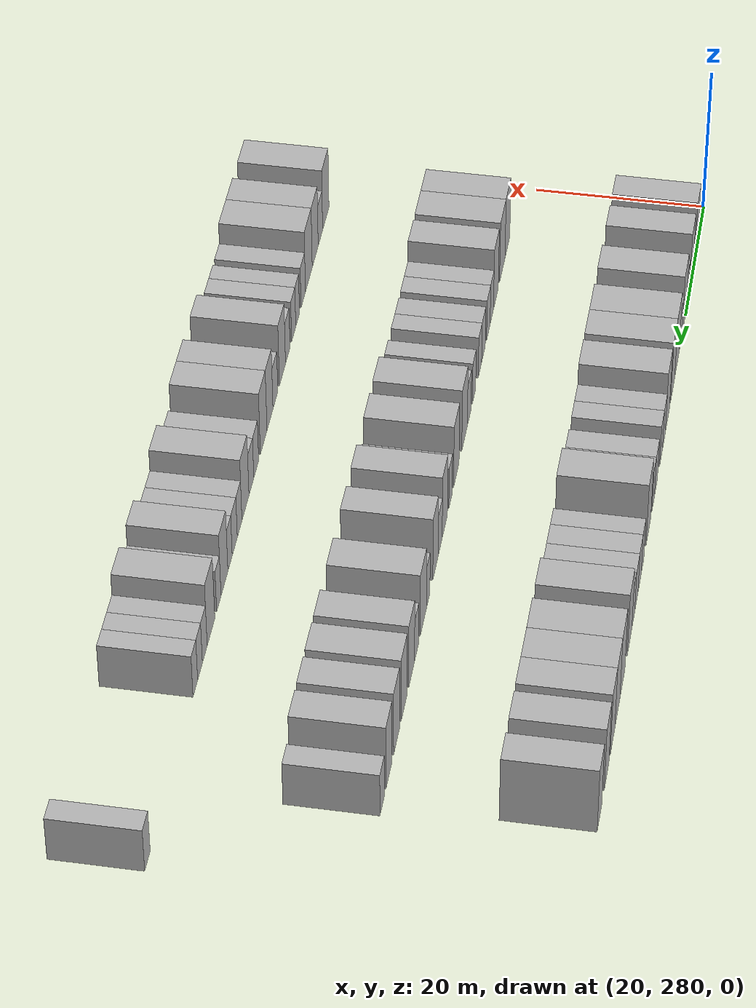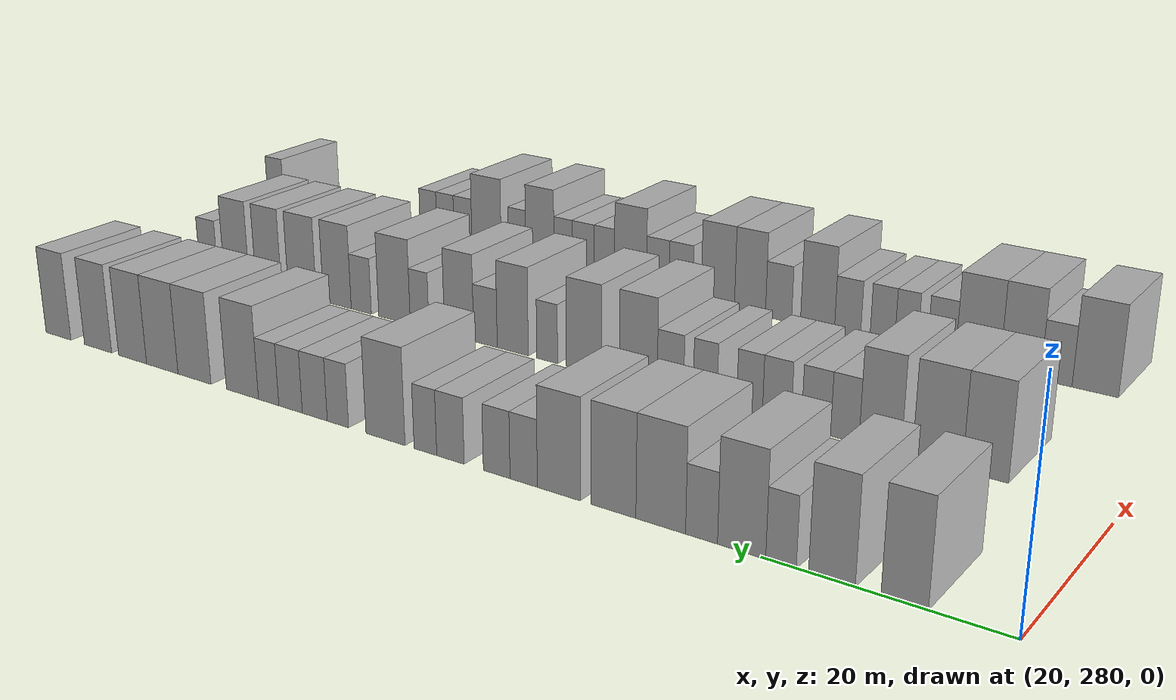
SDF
<sdf version="1.6">
 <world name="default">
  <model name="building_168">
   <static>1</static>
   <pose>25.0000 288.5473 0 0.000000 0.000000 0.000000</pose>
   <link name="link">
    <pose>0 0 4.50 0 0 0</pose>
    <collision name="collision"><geometry><box><size>10.0000 3.6170 9.0000</size></box></geometry></collision>
    <visual name="visual">
     <cast_shadows>0</cast_shadows>
     <geometry><box><size>10.0000 3.6170 9.0000</size></box></geometry>
     <material>
      <script>
       <uri>model://HANNAS_wall/materials/scripts</uri>
       <uri>model://HANNAS_wall/materials/textures</uri>
       <name>vrc/HANNAS_wall</name>
      </script>
     </material>
    </visual>
   </link>
  </model>
  <model name="building_169">
   <static>1</static>
   <pose>25.0000 294.2238 0 0.000000 0.000000 0.000000</pose>
   <link name="link">
    <pose>0 0 4.50 0 0 0</pose>
    <collision name="collision"><geometry><box><size>10.0000 3.7359 9.0000</size></box></geometry></collision>
    <visual name="visual">
     <cast_shadows>0</cast_shadows>
     <geometry><box><size>10.0000 3.7359 9.0000</size></box></geometry>
     <material>
      <script>
       <uri>model://HANNAS_wall/materials/scripts</uri>
       <uri>model://HANNAS_wall/materials/textures</uri>
       <name>vrc/HANNAS_wall</name>
      </script>
     </material>
    </visual>
   </link>
  </model>
  <model name="building_170">
   <static>1</static>
   <pose>25.0000 298.3610 0 0.000000 0.000000 0.000000</pose>
   <link name="link">
    <pose>0 0 3.00 0 0 0</pose>
    <collision name="collision"><geometry><box><size>10.0000 2.5385 6.0000</size></box></geometry></collision>
    <visual name="visual">
     <cast_shadows>0</cast_shadows>
     <geometry><box><size>10.0000 2.5385 6.0000</size></box></geometry>
     <material>
      <script>
       <uri>model://HANNAS_wall/materials/scripts</uri>
       <uri>model://HANNAS_wall/materials/textures</uri>
       <name>vrc/HANNAS_wall</name>
      </script>
     </material>
    </visual>
   </link>
  </model>
  <model name="building_171">
   <static>1</static>
   <pose>25.0000 301.6834 0 0.000000 0.000000 0.000000</pose>
   <link name="link">
    <pose>0 0 4.50 0 0 0</pose>
    <collision name="collision"><geometry><box><size>10.0000 4.1062 9.0000</size></box></geometry></collision>
    <visual name="visual">
     <cast_shadows>0</cast_shadows>
     <geometry><box><size>10.0000 4.1062 9.0000</size></box></geometry>
     <material>
      <script>
       <uri>model://HANNAS_wall/materials/scripts</uri>
       <uri>model://HANNAS_wall/materials/textures</uri>
       <name>vrc/HANNAS_wall</name>
      </script>
     </material>
    </visual>
   </link>
  </model>
  <model name="building_172">
   <static>1</static>
   <pose>25.0000 305.1374 0 0.000000 0.000000 0.000000</pose>
   <link name="link">
    <pose>0 0 3.00 0 0 0</pose>
    <collision name="collision"><geometry><box><size>10.0000 2.8018 6.0000</size></box></geometry></collision>
    <visual name="visual">
     <cast_shadows>0</cast_shadows>
     <geometry><box><size>10.0000 2.8018 6.0000</size></box></geometry>
     <material>
      <script>
       <uri>model://HANNAS_wall/materials/scripts</uri>
       <uri>model://HANNAS_wall/materials/textures</uri>
       <name>vrc/HANNAS_wall</name>
      </script>
     </material>
    </visual>
   </link>
  </model>
  <model name="building_173">
   <static>1</static>
   <pose>25.0000 308.7852 0 0.000000 0.000000 0.000000</pose>
   <link name="link">
    <pose>0 0 4.50 0 0 0</pose>
    <collision name="collision"><geometry><box><size>10.0000 4.4940 9.0000</size></box></geometry></collision>
    <visual name="visual">
     <cast_shadows>0</cast_shadows>
     <geometry><box><size>10.0000 4.4940 9.0000</size></box></geometry>
     <material>
      <script>
       <uri>model://HANNAS_wall/materials/scripts</uri>
       <uri>model://HANNAS_wall/materials/textures</uri>
       <name>vrc/HANNAS_wall</name>
      </script>
     </material>
    </visual>
   </link>
  </model>
  <model name="building_174">
   <static>1</static>
   <pose>25.0000 313.1462 0 0.000000 0.000000 0.000000</pose>
   <link name="link">
    <pose>0 0 4.50 0 0 0</pose>
    <collision name="collision"><geometry><box><size>10.0000 4.2279 9.0000</size></box></geometry></collision>
    <visual name="visual">
     <cast_shadows>0</cast_shadows>
     <geometry><box><size>10.0000 4.2279 9.0000</size></box></geometry>
     <material>
      <script>
       <uri>model://HANNAS_wall/materials/scripts</uri>
       <uri>model://HANNAS_wall/materials/textures</uri>
       <name>vrc/HANNAS_wall</name>
      </script>
     </material>
    </visual>
   </link>
  </model>
  <model name="building_175">
   <static>1</static>
   <pose>25.0000 318.3554 0 0.000000 0.000000 0.000000</pose>
   <link name="link">
    <pose>0 0 4.50 0 0 0</pose>
    <collision name="collision"><geometry><box><size>10.0000 4.1904 9.0000</size></box></geometry></collision>
    <visual name="visual">
     <cast_shadows>0</cast_shadows>
     <geometry><box><size>10.0000 4.1904 9.0000</size></box></geometry>
     <material>
      <script>
       <uri>model://HANNAS_wall/materials/scripts</uri>
       <uri>model://HANNAS_wall/materials/textures</uri>
       <name>vrc/HANNAS_wall</name>
      </script>
     </material>
    </visual>
   </link>
  </model>
  <model name="building_176">
   <static>1</static>
   <pose>25.0000 321.8205 0 0.000000 0.000000 0.000000</pose>
   <link name="link">
    <pose>0 0 3.00 0 0 0</pose>
    <collision name="collision"><geometry><box><size>10.0000 2.7398 6.0000</size></box></geometry></collision>
    <visual name="visual">
     <cast_shadows>0</cast_shadows>
     <geometry><box><size>10.0000 2.7398 6.0000</size></box></geometry>
     <material>
      <script>
       <uri>model://HANNAS_wall/materials/scripts</uri>
       <uri>model://HANNAS_wall/materials/textures</uri>
       <name>vrc/HANNAS_wall</name>
      </script>
     </material>
    </visual>
   </link>
  </model>
  <model name="building_177">
   <static>1</static>
   <pose>25.0000 324.5578 0 0.000000 0.000000 0.000000</pose>
   <link name="link">
    <pose>0 0 3.00 0 0 0</pose>
    <collision name="collision"><geometry><box><size>10.0000 2.7348 6.0000</size></box></geometry></collision>
    <visual name="visual">
     <cast_shadows>0</cast_shadows>
     <geometry><box><size>10.0000 2.7348 6.0000</size></box></geometry>
     <material>
      <script>
       <uri>model://HANNAS_wall/materials/scripts</uri>
       <uri>model://HANNAS_wall/materials/textures</uri>
       <name>vrc/HANNAS_wall</name>
      </script>
     </material>
    </visual>
   </link>
  </model>
  <model name="building_178">
   <static>1</static>
   <pose>25.0000 329.3875 0 0.000000 0.000000 0.000000</pose>
   <link name="link">
    <pose>0 0 3.00 0 0 0</pose>
    <collision name="collision"><geometry><box><size>10.0000 2.9247 6.0000</size></box></geometry></collision>
    <visual name="visual">
     <cast_shadows>0</cast_shadows>
     <geometry><box><size>10.0000 2.9247 6.0000</size></box></geometry>
     <material>
      <script>
       <uri>model://HANNAS_wall/materials/scripts</uri>
       <uri>model://HANNAS_wall/materials/textures</uri>
       <name>vrc/HANNAS_wall</name>
      </script>
     </material>
    </visual>
   </link>
  </model>
  <model name="building_179">
   <static>1</static>
   <pose>25.0000 332.0744 0 0.000000 0.000000 0.000000</pose>
   <link name="link">
    <pose>0 0 3.00 0 0 0</pose>
    <collision name="collision"><geometry><box><size>10.0000 2.4490 6.0000</size></box></geometry></collision>
    <visual name="visual">
     <cast_shadows>0</cast_shadows>
     <geometry><box><size>10.0000 2.4490 6.0000</size></box></geometry>
     <material>
      <script>
       <uri>model://HANNAS_wall/materials/scripts</uri>
       <uri>model://HANNAS_wall/materials/textures</uri>
       <name>vrc/HANNAS_wall</name>
      </script>
     </material>
    </visual>
   </link>
  </model>
  <model name="building_180">
   <static>1</static>
   <pose>25.0000 336.4871 0 0.000000 0.000000 0.000000</pose>
   <link name="link">
    <pose>0 0 4.50 0 0 0</pose>
    <collision name="collision"><geometry><box><size>10.0000 4.3764 9.0000</size></box></geometry></collision>
    <visual name="visual">
     <cast_shadows>0</cast_shadows>
     <geometry><box><size>10.0000 4.3764 9.0000</size></box></geometry>
     <material>
      <script>
       <uri>model://HANNAS_wall/materials/scripts</uri>
       <uri>model://HANNAS_wall/materials/textures</uri>
       <name>vrc/HANNAS_wall</name>
      </script>
     </material>
    </visual>
   </link>
  </model>
  <model name="building_181">
   <static>1</static>
   <pose>25.0000 341.9205 0 0.000000 0.000000 0.000000</pose>
   <link name="link">
    <pose>0 0 3.00 0 0 0</pose>
    <collision name="collision"><geometry><box><size>10.0000 2.4905 6.0000</size></box></geometry></collision>
    <visual name="visual">
     <cast_shadows>0</cast_shadows>
     <geometry><box><size>10.0000 2.4905 6.0000</size></box></geometry>
     <material>
      <script>
       <uri>model://HANNAS_wall/materials/scripts</uri>
       <uri>model://HANNAS_wall/materials/textures</uri>
       <name>vrc/HANNAS_wall</name>
      </script>
     </material>
    </visual>
   </link>
  </model>
  <model name="building_182">
   <static>1</static>
   <pose>25.0000 344.6469 0 0.000000 0.000000 0.000000</pose>
   <link name="link">
    <pose>0 0 3.00 0 0 0</pose>
    <collision name="collision"><geometry><box><size>10.0000 2.9623 6.0000</size></box></geometry></collision>
    <visual name="visual">
     <cast_shadows>0</cast_shadows>
     <geometry><box><size>10.0000 2.9623 6.0000</size></box></geometry>
     <material>
      <script>
       <uri>model://HANNAS_wall/materials/scripts</uri>
       <uri>model://HANNAS_wall/materials/textures</uri>
       <name>vrc/HANNAS_wall</name>
      </script>
     </material>
    </visual>
   </link>
  </model>
  <model name="building_183">
   <static>1</static>
   <pose>25.0000 347.5592 0 0.000000 0.000000 0.000000</pose>
   <link name="link">
    <pose>0 0 3.00 0 0 0</pose>
    <collision name="collision"><geometry><box><size>10.0000 2.8623 6.0000</size></box></geometry></collision>
    <visual name="visual">
     <cast_shadows>0</cast_shadows>
     <geometry><box><size>10.0000 2.8623 6.0000</size></box></geometry>
     <material>
      <script>
       <uri>model://HANNAS_wall/materials/scripts</uri>
       <uri>model://HANNAS_wall/materials/textures</uri>
       <name>vrc/HANNAS_wall</name>
      </script>
     </material>
    </visual>
   </link>
  </model>
  <model name="building_184">
   <static>1</static>
   <pose>25.0000 350.2515 0 0.000000 0.000000 0.000000</pose>
   <link name="link">
    <pose>0 0 3.00 0 0 0</pose>
    <collision name="collision"><geometry><box><size>10.0000 2.5224 6.0000</size></box></geometry></collision>
    <visual name="visual">
     <cast_shadows>0</cast_shadows>
     <geometry><box><size>10.0000 2.5224 6.0000</size></box></geometry>
     <material>
      <script>
       <uri>model://HANNAS_wall/materials/scripts</uri>
       <uri>model://HANNAS_wall/materials/textures</uri>
       <name>vrc/HANNAS_wall</name>
      </script>
     </material>
    </visual>
   </link>
  </model>
  <model name="building_185">
   <static>1</static>
   <pose>25.0000 353.5379 0 0.000000 0.000000 0.000000</pose>
   <link name="link">
    <pose>0 0 4.50 0 0 0</pose>
    <collision name="collision"><geometry><box><size>10.0000 4.0504 9.0000</size></box></geometry></collision>
    <visual name="visual">
     <cast_shadows>0</cast_shadows>
     <geometry><box><size>10.0000 4.0504 9.0000</size></box></geometry>
     <material>
      <script>
       <uri>model://HANNAS_wall/materials/scripts</uri>
       <uri>model://HANNAS_wall/materials/textures</uri>
       <name>vrc/HANNAS_wall</name>
      </script>
     </material>
    </visual>
   </link>
  </model>
  <model name="building_186">
   <static>1</static>
   <pose>25.0000 359.7402 0 0.000000 0.000000 0.000000</pose>
   <link name="link">
    <pose>0 0 4.50 0 0 0</pose>
    <collision name="collision"><geometry><box><size>10.0000 4.3541 9.0000</size></box></geometry></collision>
    <visual name="visual">
     <cast_shadows>0</cast_shadows>
     <geometry><box><size>10.0000 4.3541 9.0000</size></box></geometry>
     <material>
      <script>
       <uri>model://HANNAS_wall/materials/scripts</uri>
       <uri>model://HANNAS_wall/materials/textures</uri>
       <name>vrc/HANNAS_wall</name>
      </script>
     </material>
    </visual>
   </link>
  </model>
  <model name="building_187">
   <static>1</static>
   <pose>25.0000 364.0581 0 0.000000 0.000000 0.000000</pose>
   <link name="link">
    <pose>0 0 4.50 0 0 0</pose>
    <collision name="collision"><geometry><box><size>10.0000 4.2816 9.0000</size></box></geometry></collision>
    <visual name="visual">
     <cast_shadows>0</cast_shadows>
     <geometry><box><size>10.0000 4.2816 9.0000</size></box></geometry>
     <material>
      <script>
       <uri>model://HANNAS_wall/materials/scripts</uri>
       <uri>model://HANNAS_wall/materials/textures</uri>
       <name>vrc/HANNAS_wall</name>
      </script>
     </material>
    </visual>
   </link>
  </model>
  <model name="building_188">
   <static>1</static>
   <pose>25.0000 368.1512 0 0.000000 0.000000 0.000000</pose>
   <link name="link">
    <pose>0 0 4.50 0 0 0</pose>
    <collision name="collision"><geometry><box><size>10.0000 3.9047 9.0000</size></box></geometry></collision>
    <visual name="visual">
     <cast_shadows>0</cast_shadows>
     <geometry><box><size>10.0000 3.9047 9.0000</size></box></geometry>
     <material>
      <script>
       <uri>model://HANNAS_wall/materials/scripts</uri>
       <uri>model://HANNAS_wall/materials/textures</uri>
       <name>vrc/HANNAS_wall</name>
      </script>
     </material>
    </visual>
   </link>
  </model>
  <model name="building_189">
   <static>1</static>
   <pose>25.0000 373.0566 0 0.000000 0.000000 0.000000</pose>
   <link name="link">
    <pose>0 0 4.50 0 0 0</pose>
    <collision name="collision"><geometry><box><size>10.0000 3.9061 9.0000</size></box></geometry></collision>
    <visual name="visual">
     <cast_shadows>0</cast_shadows>
     <geometry><box><size>10.0000 3.9061 9.0000</size></box></geometry>
     <material>
      <script>
       <uri>model://HANNAS_wall/materials/scripts</uri>
       <uri>model://HANNAS_wall/materials/textures</uri>
       <name>vrc/HANNAS_wall</name>
      </script>
     </material>
    </visual>
   </link>
  </model>
  <model name="building_190">
   <static>1</static>
   <pose>25.0000 378.8685 0 0.000000 0.000000 0.000000</pose>
   <link name="link">
    <pose>0 0 4.50 0 0 0</pose>
    <collision name="collision"><geometry><box><size>10.0000 3.7177 9.0000</size></box></geometry></collision>
    <visual name="visual">
     <cast_shadows>0</cast_shadows>
     <geometry><box><size>10.0000 3.7177 9.0000</size></box></geometry>
     <material>
      <script>
       <uri>model://HANNAS_wall/materials/scripts</uri>
       <uri>model://HANNAS_wall/materials/textures</uri>
       <name>vrc/HANNAS_wall</name>
      </script>
     </material>
    </visual>
   </link>
  </model>
  <model name="building_353">
   <static>1</static>
   <pose>47.0000 291.2219 0 0.000000 0.000000 0.000000</pose>
   <link name="link">
    <pose>0 0 4.50 0 0 0</pose>
    <collision name="collision"><geometry><box><size>10.0000 3.9709 9.0000</size></box></geometry></collision>
    <visual name="visual">
     <cast_shadows>0</cast_shadows>
     <geometry><box><size>10.0000 3.9709 9.0000</size></box></geometry>
     <material>
      <script>
       <uri>model://HANNAS_wall/materials/scripts</uri>
       <uri>model://HANNAS_wall/materials/textures</uri>
       <name>vrc/HANNAS_wall</name>
      </script>
     </material>
    </visual>
   </link>
  </model>
  <model name="building_354">
   <static>1</static>
   <pose>47.0000 295.4211 0 0.000000 0.000000 0.000000</pose>
   <link name="link">
    <pose>0 0 4.50 0 0 0</pose>
    <collision name="collision"><geometry><box><size>10.0000 4.4274 9.0000</size></box></geometry></collision>
    <visual name="visual">
     <cast_shadows>0</cast_shadows>
     <geometry><box><size>10.0000 4.4274 9.0000</size></box></geometry>
     <material>
      <script>
       <uri>model://HANNAS_wall/materials/scripts</uri>
       <uri>model://HANNAS_wall/materials/textures</uri>
       <name>vrc/HANNAS_wall</name>
      </script>
     </material>
    </visual>
   </link>
  </model>
  <model name="building_355">
   <static>1</static>
   <pose>47.0000 300.5773 0 0.000000 0.000000 0.000000</pose>
   <link name="link">
    <pose>0 0 4.50 0 0 0</pose>
    <collision name="collision"><geometry><box><size>10.0000 3.8851 9.0000</size></box></geometry></collision>
    <visual name="visual">
     <cast_shadows>0</cast_shadows>
     <geometry><box><size>10.0000 3.8851 9.0000</size></box></geometry>
     <material>
      <script>
       <uri>model://HANNAS_wall/materials/scripts</uri>
       <uri>model://HANNAS_wall/materials/textures</uri>
       <name>vrc/HANNAS_wall</name>
      </script>
     </material>
    </visual>
   </link>
  </model>
  <model name="building_356">
   <static>1</static>
   <pose>47.0000 303.8608 0 0.000000 0.000000 0.000000</pose>
   <link name="link">
    <pose>0 0 3.00 0 0 0</pose>
    <collision name="collision"><geometry><box><size>10.0000 2.6818 6.0000</size></box></geometry></collision>
    <visual name="visual">
     <cast_shadows>0</cast_shadows>
     <geometry><box><size>10.0000 2.6818 6.0000</size></box></geometry>
     <material>
      <script>
       <uri>model://HANNAS_wall/materials/scripts</uri>
       <uri>model://HANNAS_wall/materials/textures</uri>
       <name>vrc/HANNAS_wall</name>
      </script>
     </material>
    </visual>
   </link>
  </model>
  <model name="building_357">
   <static>1</static>
   <pose>47.0000 306.6035 0 0.000000 0.000000 0.000000</pose>
   <link name="link">
    <pose>0 0 3.00 0 0 0</pose>
    <collision name="collision"><geometry><box><size>10.0000 2.8036 6.0000</size></box></geometry></collision>
    <visual name="visual">
     <cast_shadows>0</cast_shadows>
     <geometry><box><size>10.0000 2.8036 6.0000</size></box></geometry>
     <material>
      <script>
       <uri>model://HANNAS_wall/materials/scripts</uri>
       <uri>model://HANNAS_wall/materials/textures</uri>
       <name>vrc/HANNAS_wall</name>
      </script>
     </material>
    </visual>
   </link>
  </model>
  <model name="building_358">
   <static>1</static>
   <pose>47.0000 310.4274 0 0.000000 0.000000 0.000000</pose>
   <link name="link">
    <pose>0 0 3.00 0 0 0</pose>
    <collision name="collision"><geometry><box><size>10.0000 2.8443 6.0000</size></box></geometry></collision>
    <visual name="visual">
     <cast_shadows>0</cast_shadows>
     <geometry><box><size>10.0000 2.8443 6.0000</size></box></geometry>
     <material>
      <script>
       <uri>model://HANNAS_wall/materials/scripts</uri>
       <uri>model://HANNAS_wall/materials/textures</uri>
       <name>vrc/HANNAS_wall</name>
      </script>
     </material>
    </visual>
   </link>
  </model>
  <model name="building_359">
   <static>1</static>
   <pose>47.0000 313.1494 0 0.000000 0.000000 0.000000</pose>
   <link name="link">
    <pose>0 0 3.00 0 0 0</pose>
    <collision name="collision"><geometry><box><size>10.0000 2.5996 6.0000</size></box></geometry></collision>
    <visual name="visual">
     <cast_shadows>0</cast_shadows>
     <geometry><box><size>10.0000 2.5996 6.0000</size></box></geometry>
     <material>
      <script>
       <uri>model://HANNAS_wall/materials/scripts</uri>
       <uri>model://HANNAS_wall/materials/textures</uri>
       <name>vrc/HANNAS_wall</name>
      </script>
     </material>
    </visual>
   </link>
  </model>
  <model name="building_360">
   <static>1</static>
   <pose>47.0000 317.6934 0 0.000000 0.000000 0.000000</pose>
   <link name="link">
    <pose>0 0 3.00 0 0 0</pose>
    <collision name="collision"><geometry><box><size>10.0000 2.4884 6.0000</size></box></geometry></collision>
    <visual name="visual">
     <cast_shadows>0</cast_shadows>
     <geometry><box><size>10.0000 2.4884 6.0000</size></box></geometry>
     <material>
      <script>
       <uri>model://HANNAS_wall/materials/scripts</uri>
       <uri>model://HANNAS_wall/materials/textures</uri>
       <name>vrc/HANNAS_wall</name>
      </script>
     </material>
    </visual>
   </link>
  </model>
  <model name="building_361">
   <static>1</static>
   <pose>47.0000 321.3483 0 0.000000 0.000000 0.000000</pose>
   <link name="link">
    <pose>0 0 3.00 0 0 0</pose>
    <collision name="collision"><geometry><box><size>10.0000 2.8214 6.0000</size></box></geometry></collision>
    <visual name="visual">
     <cast_shadows>0</cast_shadows>
     <geometry><box><size>10.0000 2.8214 6.0000</size></box></geometry>
     <material>
      <script>
       <uri>model://HANNAS_wall/materials/scripts</uri>
       <uri>model://HANNAS_wall/materials/textures</uri>
       <name>vrc/HANNAS_wall</name>
      </script>
     </material>
    </visual>
   </link>
  </model>
  <model name="building_362">
   <static>1</static>
   <pose>47.0000 324.8235 0 0.000000 0.000000 0.000000</pose>
   <link name="link">
    <pose>0 0 4.50 0 0 0</pose>
    <collision name="collision"><geometry><box><size>10.0000 4.1291 9.0000</size></box></geometry></collision>
    <visual name="visual">
     <cast_shadows>0</cast_shadows>
     <geometry><box><size>10.0000 4.1291 9.0000</size></box></geometry>
     <material>
      <script>
       <uri>model://HANNAS_wall/materials/scripts</uri>
       <uri>model://HANNAS_wall/materials/textures</uri>
       <name>vrc/HANNAS_wall</name>
      </script>
     </material>
    </visual>
   </link>
  </model>
  <model name="building_363">
   <static>1</static>
   <pose>47.0000 330.8930 0 0.000000 0.000000 0.000000</pose>
   <link name="link">
    <pose>0 0 4.50 0 0 0</pose>
    <collision name="collision"><geometry><box><size>10.0000 4.0099 9.0000</size></box></geometry></collision>
    <visual name="visual">
     <cast_shadows>0</cast_shadows>
     <geometry><box><size>10.0000 4.0099 9.0000</size></box></geometry>
     <material>
      <script>
       <uri>model://HANNAS_wall/materials/scripts</uri>
       <uri>model://HANNAS_wall/materials/textures</uri>
       <name>vrc/HANNAS_wall</name>
      </script>
     </material>
    </visual>
   </link>
  </model>
  <model name="building_364">
   <static>1</static>
   <pose>47.0000 335.1153 0 0.000000 0.000000 0.000000</pose>
   <link name="link">
    <pose>0 0 3.00 0 0 0</pose>
    <collision name="collision"><geometry><box><size>10.0000 2.4347 6.0000</size></box></geometry></collision>
    <visual name="visual">
     <cast_shadows>0</cast_shadows>
     <geometry><box><size>10.0000 2.4347 6.0000</size></box></geometry>
     <material>
      <script>
       <uri>model://HANNAS_wall/materials/scripts</uri>
       <uri>model://HANNAS_wall/materials/textures</uri>
       <name>vrc/HANNAS_wall</name>
      </script>
     </material>
    </visual>
   </link>
  </model>
  <model name="building_365">
   <static>1</static>
   <pose>47.0000 339.1998 0 0.000000 0.000000 0.000000</pose>
   <link name="link">
    <pose>0 0 4.50 0 0 0</pose>
    <collision name="collision"><geometry><box><size>10.0000 3.7341 9.0000</size></box></geometry></collision>
    <visual name="visual">
     <cast_shadows>0</cast_shadows>
     <geometry><box><size>10.0000 3.7341 9.0000</size></box></geometry>
     <material>
      <script>
       <uri>model://HANNAS_wall/materials/scripts</uri>
       <uri>model://HANNAS_wall/materials/textures</uri>
       <name>vrc/HANNAS_wall</name>
      </script>
     </material>
    </visual>
   </link>
  </model>
  <model name="building_366">
   <static>1</static>
   <pose>47.0000 342.5121 0 0.000000 0.000000 0.000000</pose>
   <link name="link">
    <pose>0 0 3.00 0 0 0</pose>
    <collision name="collision"><geometry><box><size>10.0000 2.8907 6.0000</size></box></geometry></collision>
    <visual name="visual">
     <cast_shadows>0</cast_shadows>
     <geometry><box><size>10.0000 2.8907 6.0000</size></box></geometry>
     <material>
      <script>
       <uri>model://HANNAS_wall/materials/scripts</uri>
       <uri>model://HANNAS_wall/materials/textures</uri>
       <name>vrc/HANNAS_wall</name>
      </script>
     </material>
    </visual>
   </link>
  </model>
  <model name="building_367">
   <static>1</static>
   <pose>47.0000 345.7878 0 0.000000 0.000000 0.000000</pose>
   <link name="link">
    <pose>0 0 4.50 0 0 0</pose>
    <collision name="collision"><geometry><box><size>10.0000 3.6606 9.0000</size></box></geometry></collision>
    <visual name="visual">
     <cast_shadows>0</cast_shadows>
     <geometry><box><size>10.0000 3.6606 9.0000</size></box></geometry>
     <material>
      <script>
       <uri>model://HANNAS_wall/materials/scripts</uri>
       <uri>model://HANNAS_wall/materials/textures</uri>
       <name>vrc/HANNAS_wall</name>
      </script>
     </material>
    </visual>
   </link>
  </model>
  <model name="building_368">
   <static>1</static>
   <pose>47.0000 350.8263 0 0.000000 0.000000 0.000000</pose>
   <link name="link">
    <pose>0 0 3.00 0 0 0</pose>
    <collision name="collision"><geometry><box><size>10.0000 2.4166 6.0000</size></box></geometry></collision>
    <visual name="visual">
     <cast_shadows>0</cast_shadows>
     <geometry><box><size>10.0000 2.4166 6.0000</size></box></geometry>
     <material>
      <script>
       <uri>model://HANNAS_wall/materials/scripts</uri>
       <uri>model://HANNAS_wall/materials/textures</uri>
       <name>vrc/HANNAS_wall</name>
      </script>
     </material>
    </visual>
   </link>
  </model>
  <model name="building_369">
   <static>1</static>
   <pose>47.0000 354.1201 0 0.000000 0.000000 0.000000</pose>
   <link name="link">
    <pose>0 0 4.50 0 0 0</pose>
    <collision name="collision"><geometry><box><size>10.0000 4.1710 9.0000</size></box></geometry></collision>
    <visual name="visual">
     <cast_shadows>0</cast_shadows>
     <geometry><box><size>10.0000 4.1710 9.0000</size></box></geometry>
     <material>
      <script>
       <uri>model://HANNAS_wall/materials/scripts</uri>
       <uri>model://HANNAS_wall/materials/textures</uri>
       <name>vrc/HANNAS_wall</name>
      </script>
     </material>
    </visual>
   </link>
  </model>
  <model name="building_370">
   <static>1</static>
   <pose>47.0000 358.5732 0 0.000000 0.000000 0.000000</pose>
   <link name="link">
    <pose>0 0 3.00 0 0 0</pose>
    <collision name="collision"><geometry><box><size>10.0000 2.7352 6.0000</size></box></geometry></collision>
    <visual name="visual">
     <cast_shadows>0</cast_shadows>
     <geometry><box><size>10.0000 2.7352 6.0000</size></box></geometry>
     <material>
      <script>
       <uri>model://HANNAS_wall/materials/scripts</uri>
       <uri>model://HANNAS_wall/materials/textures</uri>
       <name>vrc/HANNAS_wall</name>
      </script>
     </material>
    </visual>
   </link>
  </model>
  <model name="building_371">
   <static>1</static>
   <pose>47.0000 361.8616 0 0.000000 0.000000 0.000000</pose>
   <link name="link">
    <pose>0 0 4.50 0 0 0</pose>
    <collision name="collision"><geometry><box><size>10.0000 3.8415 9.0000</size></box></geometry></collision>
    <visual name="visual">
     <cast_shadows>0</cast_shadows>
     <geometry><box><size>10.0000 3.8415 9.0000</size></box></geometry>
     <material>
      <script>
       <uri>model://HANNAS_wall/materials/scripts</uri>
       <uri>model://HANNAS_wall/materials/textures</uri>
       <name>vrc/HANNAS_wall</name>
      </script>
     </material>
    </visual>
   </link>
  </model>
  <model name="building_372">
   <static>1</static>
   <pose>47.0000 366.7899 0 0.000000 0.000000 0.000000</pose>
   <link name="link">
    <pose>0 0 4.50 0 0 0</pose>
    <collision name="collision"><geometry><box><size>10.0000 4.0149 9.0000</size></box></geometry></collision>
    <visual name="visual">
     <cast_shadows>0</cast_shadows>
     <geometry><box><size>10.0000 4.0149 9.0000</size></box></geometry>
     <material>
      <script>
       <uri>model://HANNAS_wall/materials/scripts</uri>
       <uri>model://HANNAS_wall/materials/textures</uri>
       <name>vrc/HANNAS_wall</name>
      </script>
     </material>
    </visual>
   </link>
  </model>
  <model name="building_373">
   <static>1</static>
   <pose>47.0000 371.6781 0 0.000000 0.000000 0.000000</pose>
   <link name="link">
    <pose>0 0 4.50 0 0 0</pose>
    <collision name="collision"><geometry><box><size>10.0000 3.7616 9.0000</size></box></geometry></collision>
    <visual name="visual">
     <cast_shadows>0</cast_shadows>
     <geometry><box><size>10.0000 3.7616 9.0000</size></box></geometry>
     <material>
      <script>
       <uri>model://HANNAS_wall/materials/scripts</uri>
       <uri>model://HANNAS_wall/materials/textures</uri>
       <name>vrc/HANNAS_wall</name>
      </script>
     </material>
    </visual>
   </link>
  </model>
  <model name="building_374">
   <static>1</static>
   <pose>47.0000 376.4530 0 0.000000 0.000000 0.000000</pose>
   <link name="link">
    <pose>0 0 4.50 0 0 0</pose>
    <collision name="collision"><geometry><box><size>10.0000 3.7881 9.0000</size></box></geometry></collision>
    <visual name="visual">
     <cast_shadows>0</cast_shadows>
     <geometry><box><size>10.0000 3.7881 9.0000</size></box></geometry>
     <material>
      <script>
       <uri>model://HANNAS_wall/materials/scripts</uri>
       <uri>model://HANNAS_wall/materials/textures</uri>
       <name>vrc/HANNAS_wall</name>
      </script>
     </material>
    </visual>
   </link>
  </model>
  <model name="building_375">
   <static>1</static>
   <pose>47.0000 380.7212 0 0.000000 0.000000 0.000000</pose>
   <link name="link">
    <pose>0 0 3.00 0 0 0</pose>
    <collision name="collision"><geometry><box><size>10.0000 2.7483 6.0000</size></box></geometry></collision>
    <visual name="visual">
     <cast_shadows>0</cast_shadows>
     <geometry><box><size>10.0000 2.7483 6.0000</size></box></geometry>
     <material>
      <script>
       <uri>model://HANNAS_wall/materials/scripts</uri>
       <uri>model://HANNAS_wall/materials/textures</uri>
       <name>vrc/HANNAS_wall</name>
      </script>
     </material>
    </visual>
   </link>
  </model>
  <model name="building_535">
   <static>1</static>
   <pose>69.0000 289.3589 0 0.000000 0.000000 0.000000</pose>
   <link name="link">
    <pose>0 0 4.50 0 0 0</pose>
    <collision name="collision"><geometry><box><size>10.0000 4.3013 9.0000</size></box></geometry></collision>
    <visual name="visual">
     <cast_shadows>0</cast_shadows>
     <geometry><box><size>10.0000 4.3013 9.0000</size></box></geometry>
     <material>
      <script>
       <uri>model://HANNAS_wall/materials/scripts</uri>
       <uri>model://HANNAS_wall/materials/textures</uri>
       <name>vrc/HANNAS_wall</name>
      </script>
     </material>
    </visual>
   </link>
  </model>
  <model name="building_536">
   <static>1</static>
   <pose>69.0000 293.0016 0 0.000000 0.000000 0.000000</pose>
   <link name="link">
    <pose>0 0 3.00 0 0 0</pose>
    <collision name="collision"><geometry><box><size>10.0000 2.9839 6.0000</size></box></geometry></collision>
    <visual name="visual">
     <cast_shadows>0</cast_shadows>
     <geometry><box><size>10.0000 2.9839 6.0000</size></box></geometry>
     <material>
      <script>
       <uri>model://HANNAS_wall/materials/scripts</uri>
       <uri>model://HANNAS_wall/materials/textures</uri>
       <name>vrc/HANNAS_wall</name>
      </script>
     </material>
    </visual>
   </link>
  </model>
  <model name="building_537">
   <static>1</static>
   <pose>69.0000 296.4698 0 0.000000 0.000000 0.000000</pose>
   <link name="link">
    <pose>0 0 4.50 0 0 0</pose>
    <collision name="collision"><geometry><box><size>10.0000 3.9526 9.0000</size></box></geometry></collision>
    <visual name="visual">
     <cast_shadows>0</cast_shadows>
     <geometry><box><size>10.0000 3.9526 9.0000</size></box></geometry>
     <material>
      <script>
       <uri>model://HANNAS_wall/materials/scripts</uri>
       <uri>model://HANNAS_wall/materials/textures</uri>
       <name>vrc/HANNAS_wall</name>
      </script>
     </material>
    </visual>
   </link>
  </model>
  <model name="building_538">
   <static>1</static>
   <pose>69.0000 300.6712 0 0.000000 0.000000 0.000000</pose>
   <link name="link">
    <pose>0 0 4.50 0 0 0</pose>
    <collision name="collision"><geometry><box><size>10.0000 4.4501 9.0000</size></box></geometry></collision>
    <visual name="visual">
     <cast_shadows>0</cast_shadows>
     <geometry><box><size>10.0000 4.4501 9.0000</size></box></geometry>
     <material>
      <script>
       <uri>model://HANNAS_wall/materials/scripts</uri>
       <uri>model://HANNAS_wall/materials/textures</uri>
       <name>vrc/HANNAS_wall</name>
      </script>
     </material>
    </visual>
   </link>
  </model>
  <model name="building_539">
   <static>1</static>
   <pose>69.0000 304.3359 0 0.000000 0.000000 0.000000</pose>
   <link name="link">
    <pose>0 0 3.00 0 0 0</pose>
    <collision name="collision"><geometry><box><size>10.0000 2.8793 6.0000</size></box></geometry></collision>
    <visual name="visual">
     <cast_shadows>0</cast_shadows>
     <geometry><box><size>10.0000 2.8793 6.0000</size></box></geometry>
     <material>
      <script>
       <uri>model://HANNAS_wall/materials/scripts</uri>
       <uri>model://HANNAS_wall/materials/textures</uri>
       <name>vrc/HANNAS_wall</name>
      </script>
     </material>
    </visual>
   </link>
  </model>
  <model name="building_540">
   <static>1</static>
   <pose>69.0000 307.9760 0 0.000000 0.000000 0.000000</pose>
   <link name="link">
    <pose>0 0 3.00 0 0 0</pose>
    <collision name="collision"><geometry><box><size>10.0000 2.4009 6.0000</size></box></geometry></collision>
    <visual name="visual">
     <cast_shadows>0</cast_shadows>
     <geometry><box><size>10.0000 2.4009 6.0000</size></box></geometry>
     <material>
      <script>
       <uri>model://HANNAS_wall/materials/scripts</uri>
       <uri>model://HANNAS_wall/materials/textures</uri>
       <name>vrc/HANNAS_wall</name>
      </script>
     </material>
    </visual>
   </link>
  </model>
  <model name="building_541">
   <static>1</static>
   <pose>69.0000 310.4913 0 0.000000 0.000000 0.000000</pose>
   <link name="link">
    <pose>0 0 3.00 0 0 0</pose>
    <collision name="collision"><geometry><box><size>10.0000 2.6298 6.0000</size></box></geometry></collision>
    <visual name="visual">
     <cast_shadows>0</cast_shadows>
     <geometry><box><size>10.0000 2.6298 6.0000</size></box></geometry>
     <material>
      <script>
       <uri>model://HANNAS_wall/materials/scripts</uri>
       <uri>model://HANNAS_wall/materials/textures</uri>
       <name>vrc/HANNAS_wall</name>
      </script>
     </material>
    </visual>
   </link>
  </model>
  <model name="building_542">
   <static>1</static>
   <pose>69.0000 314.2296 0 0.000000 0.000000 0.000000</pose>
   <link name="link">
    <pose>0 0 3.00 0 0 0</pose>
    <collision name="collision"><geometry><box><size>10.0000 2.8467 6.0000</size></box></geometry></collision>
    <visual name="visual">
     <cast_shadows>0</cast_shadows>
     <geometry><box><size>10.0000 2.8467 6.0000</size></box></geometry>
     <material>
      <script>
       <uri>model://HANNAS_wall/materials/scripts</uri>
       <uri>model://HANNAS_wall/materials/textures</uri>
       <name>vrc/HANNAS_wall</name>
      </script>
     </material>
    </visual>
   </link>
  </model>
  <model name="building_543">
   <static>1</static>
   <pose>69.0000 317.5447 0 0.000000 0.000000 0.000000</pose>
   <link name="link">
    <pose>0 0 4.50 0 0 0</pose>
    <collision name="collision"><geometry><box><size>10.0000 3.7837 9.0000</size></box></geometry></collision>
    <visual name="visual">
     <cast_shadows>0</cast_shadows>
     <geometry><box><size>10.0000 3.7837 9.0000</size></box></geometry>
     <material>
      <script>
       <uri>model://HANNAS_wall/materials/scripts</uri>
       <uri>model://HANNAS_wall/materials/textures</uri>
       <name>vrc/HANNAS_wall</name>
      </script>
     </material>
    </visual>
   </link>
  </model>
  <model name="building_544">
   <static>1</static>
   <pose>69.0000 321.9316 0 0.000000 0.000000 0.000000</pose>
   <link name="link">
    <pose>0 0 3.00 0 0 0</pose>
    <collision name="collision"><geometry><box><size>10.0000 2.9900 6.0000</size></box></geometry></collision>
    <visual name="visual">
     <cast_shadows>0</cast_shadows>
     <geometry><box><size>10.0000 2.9900 6.0000</size></box></geometry>
     <material>
      <script>
       <uri>model://HANNAS_wall/materials/scripts</uri>
       <uri>model://HANNAS_wall/materials/textures</uri>
       <name>vrc/HANNAS_wall</name>
      </script>
     </material>
    </visual>
   </link>
  </model>
  <model name="building_545">
   <static>1</static>
   <pose>69.0000 325.2358 0 0.000000 0.000000 0.000000</pose>
   <link name="link">
    <pose>0 0 4.50 0 0 0</pose>
    <collision name="collision"><geometry><box><size>10.0000 3.6183 9.0000</size></box></geometry></collision>
    <visual name="visual">
     <cast_shadows>0</cast_shadows>
     <geometry><box><size>10.0000 3.6183 9.0000</size></box></geometry>
     <material>
      <script>
       <uri>model://HANNAS_wall/materials/scripts</uri>
       <uri>model://HANNAS_wall/materials/textures</uri>
       <name>vrc/HANNAS_wall</name>
      </script>
     </material>
    </visual>
   </link>
  </model>
  <model name="building_546">
   <static>1</static>
   <pose>69.0000 329.0377 0 0.000000 0.000000 0.000000</pose>
   <link name="link">
    <pose>0 0 4.50 0 0 0</pose>
    <collision name="collision"><geometry><box><size>10.0000 3.9856 9.0000</size></box></geometry></collision>
    <visual name="visual">
     <cast_shadows>0</cast_shadows>
     <geometry><box><size>10.0000 3.9856 9.0000</size></box></geometry>
     <material>
      <script>
       <uri>model://HANNAS_wall/materials/scripts</uri>
       <uri>model://HANNAS_wall/materials/textures</uri>
       <name>vrc/HANNAS_wall</name>
      </script>
     </material>
    </visual>
   </link>
  </model>
  <model name="building_547">
   <static>1</static>
   <pose>69.0000 333.4838 0 0.000000 0.000000 0.000000</pose>
   <link name="link">
    <pose>0 0 3.00 0 0 0</pose>
    <collision name="collision"><geometry><box><size>10.0000 2.9067 6.0000</size></box></geometry></collision>
    <visual name="visual">
     <cast_shadows>0</cast_shadows>
     <geometry><box><size>10.0000 2.9067 6.0000</size></box></geometry>
     <material>
      <script>
       <uri>model://HANNAS_wall/materials/scripts</uri>
       <uri>model://HANNAS_wall/materials/textures</uri>
       <name>vrc/HANNAS_wall</name>
      </script>
     </material>
    </visual>
   </link>
  </model>
  <model name="building_548">
   <static>1</static>
   <pose>69.0000 336.3500 0 0.000000 0.000000 0.000000</pose>
   <link name="link">
    <pose>0 0 3.00 0 0 0</pose>
    <collision name="collision"><geometry><box><size>10.0000 2.8258 6.0000</size></box></geometry></collision>
    <visual name="visual">
     <cast_shadows>0</cast_shadows>
     <geometry><box><size>10.0000 2.8258 6.0000</size></box></geometry>
     <material>
      <script>
       <uri>model://HANNAS_wall/materials/scripts</uri>
       <uri>model://HANNAS_wall/materials/textures</uri>
       <name>vrc/HANNAS_wall</name>
      </script>
     </material>
    </visual>
   </link>
  </model>
  <model name="building_549">
   <static>1</static>
   <pose>69.0000 339.8016 0 0.000000 0.000000 0.000000</pose>
   <link name="link">
    <pose>0 0 4.50 0 0 0</pose>
    <collision name="collision"><geometry><box><size>10.0000 4.0773 9.0000</size></box></geometry></collision>
    <visual name="visual">
     <cast_shadows>0</cast_shadows>
     <geometry><box><size>10.0000 4.0773 9.0000</size></box></geometry>
     <material>
      <script>
       <uri>model://HANNAS_wall/materials/scripts</uri>
       <uri>model://HANNAS_wall/materials/textures</uri>
       <name>vrc/HANNAS_wall</name>
      </script>
     </material>
    </visual>
   </link>
  </model>
  <model name="building_550">
   <static>1</static>
   <pose>69.0000 343.1720 0 0.000000 0.000000 0.000000</pose>
   <link name="link">
    <pose>0 0 3.00 0 0 0</pose>
    <collision name="collision"><geometry><box><size>10.0000 2.6635 6.0000</size></box></geometry></collision>
    <visual name="visual">
     <cast_shadows>0</cast_shadows>
     <geometry><box><size>10.0000 2.6635 6.0000</size></box></geometry>
     <material>
      <script>
       <uri>model://HANNAS_wall/materials/scripts</uri>
       <uri>model://HANNAS_wall/materials/textures</uri>
       <name>vrc/HANNAS_wall</name>
      </script>
     </material>
    </visual>
   </link>
  </model>
  <model name="building_551">
   <static>1</static>
   <pose>69.0000 345.9535 0 0.000000 0.000000 0.000000</pose>
   <link name="link">
    <pose>0 0 3.00 0 0 0</pose>
    <collision name="collision"><geometry><box><size>10.0000 2.8995 6.0000</size></box></geometry></collision>
    <visual name="visual">
     <cast_shadows>0</cast_shadows>
     <geometry><box><size>10.0000 2.8995 6.0000</size></box></geometry>
     <material>
      <script>
       <uri>model://HANNAS_wall/materials/scripts</uri>
       <uri>model://HANNAS_wall/materials/textures</uri>
       <name>vrc/HANNAS_wall</name>
      </script>
     </material>
    </visual>
   </link>
  </model>
  <model name="building_552">
   <static>1</static>
   <pose>69.0000 348.6088 0 0.000000 0.000000 0.000000</pose>
   <link name="link">
    <pose>0 0 3.00 0 0 0</pose>
    <collision name="collision"><geometry><box><size>10.0000 2.4112 6.0000</size></box></geometry></collision>
    <visual name="visual">
     <cast_shadows>0</cast_shadows>
     <geometry><box><size>10.0000 2.4112 6.0000</size></box></geometry>
     <material>
      <script>
       <uri>model://HANNAS_wall/materials/scripts</uri>
       <uri>model://HANNAS_wall/materials/textures</uri>
       <name>vrc/HANNAS_wall</name>
      </script>
     </material>
    </visual>
   </link>
  </model>
  <model name="building_553">
   <static>1</static>
   <pose>69.0000 351.7356 0 0.000000 0.000000 0.000000</pose>
   <link name="link">
    <pose>0 0 4.50 0 0 0</pose>
    <collision name="collision"><geometry><box><size>10.0000 3.8424 9.0000</size></box></geometry></collision>
    <visual name="visual">
     <cast_shadows>0</cast_shadows>
     <geometry><box><size>10.0000 3.8424 9.0000</size></box></geometry>
     <material>
      <script>
       <uri>model://HANNAS_wall/materials/scripts</uri>
       <uri>model://HANNAS_wall/materials/textures</uri>
       <name>vrc/HANNAS_wall</name>
      </script>
     </material>
    </visual>
   </link>
  </model>
  <model name="building_554">
   <static>1</static>
   <pose>69.0000 354.8618 0 0.000000 0.000000 0.000000</pose>
   <link name="link">
    <pose>0 0 3.00 0 0 0</pose>
    <collision name="collision"><geometry><box><size>10.0000 2.4099 6.0000</size></box></geometry></collision>
    <visual name="visual">
     <cast_shadows>0</cast_shadows>
     <geometry><box><size>10.0000 2.4099 6.0000</size></box></geometry>
     <material>
      <script>
       <uri>model://HANNAS_wall/materials/scripts</uri>
       <uri>model://HANNAS_wall/materials/textures</uri>
       <name>vrc/HANNAS_wall</name>
      </script>
     </material>
    </visual>
   </link>
  </model>
  <model name="building_555">
   <static>1</static>
   <pose>69.0000 359.1459 0 0.000000 0.000000 0.000000</pose>
   <link name="link">
    <pose>0 0 4.50 0 0 0</pose>
    <collision name="collision"><geometry><box><size>10.0000 4.1583 9.0000</size></box></geometry></collision>
    <visual name="visual">
     <cast_shadows>0</cast_shadows>
     <geometry><box><size>10.0000 4.1583 9.0000</size></box></geometry>
     <material>
      <script>
       <uri>model://HANNAS_wall/materials/scripts</uri>
       <uri>model://HANNAS_wall/materials/textures</uri>
       <name>vrc/HANNAS_wall</name>
      </script>
     </material>
    </visual>
   </link>
  </model>
  <model name="building_556">
   <static>1</static>
   <pose>69.0000 362.5174 0 0.000000 0.000000 0.000000</pose>
   <link name="link">
    <pose>0 0 3.00 0 0 0</pose>
    <collision name="collision"><geometry><box><size>10.0000 2.5847 6.0000</size></box></geometry></collision>
    <visual name="visual">
     <cast_shadows>0</cast_shadows>
     <geometry><box><size>10.0000 2.5847 6.0000</size></box></geometry>
     <material>
      <script>
       <uri>model://HANNAS_wall/materials/scripts</uri>
       <uri>model://HANNAS_wall/materials/textures</uri>
       <name>vrc/HANNAS_wall</name>
      </script>
     </material>
    </visual>
   </link>
  </model>
  <model name="building_557">
   <static>1</static>
   <pose>69.0000 365.0762 0 0.000000 0.000000 0.000000</pose>
   <link name="link">
    <pose>0 0 3.00 0 0 0</pose>
    <collision name="collision"><geometry><box><size>10.0000 2.5329 6.0000</size></box></geometry></collision>
    <visual name="visual">
     <cast_shadows>0</cast_shadows>
     <geometry><box><size>10.0000 2.5329 6.0000</size></box></geometry>
     <material>
      <script>
       <uri>model://HANNAS_wall/materials/scripts</uri>
       <uri>model://HANNAS_wall/materials/textures</uri>
       <name>vrc/HANNAS_wall</name>
      </script>
     </material>
    </visual>
   </link>
  </model>
  <model name="building_558">
   <static>1</static>
   <pose>69.0000 367.5761 0 0.000000 0.000000 0.000000</pose>
   <link name="link">
    <pose>0 0 3.00 0 0 0</pose>
    <collision name="collision"><geometry><box><size>10.0000 2.4670 6.0000</size></box></geometry></collision>
    <visual name="visual">
     <cast_shadows>0</cast_shadows>
     <geometry><box><size>10.0000 2.4670 6.0000</size></box></geometry>
     <material>
      <script>
       <uri>model://HANNAS_wall/materials/scripts</uri>
       <uri>model://HANNAS_wall/materials/textures</uri>
       <name>vrc/HANNAS_wall</name>
      </script>
     </material>
    </visual>
   </link>
  </model>
  <model name="building_559">
   <static>1</static>
   <pose>69.0000 391.8495 0 0.000000 0.000000 0.000000</pose>
   <link name="link">
    <pose>0 0 3.00 0 0 0</pose>
    <collision name="collision"><geometry><box><size>10.0000 2.6932 6.0000</size></box></geometry></collision>
    <visual name="visual">
     <cast_shadows>0</cast_shadows>
     <geometry><box><size>10.0000 2.6932 6.0000</size></box></geometry>
     <material>
      <script>
       <uri>model://HANNAS_wall/materials/scripts</uri>
       <uri>model://HANNAS_wall/materials/textures</uri>
       <name>vrc/HANNAS_wall</name>
      </script>
     </material>
    </visual>
   </link>
  </model>
 </world>
</sdf>
